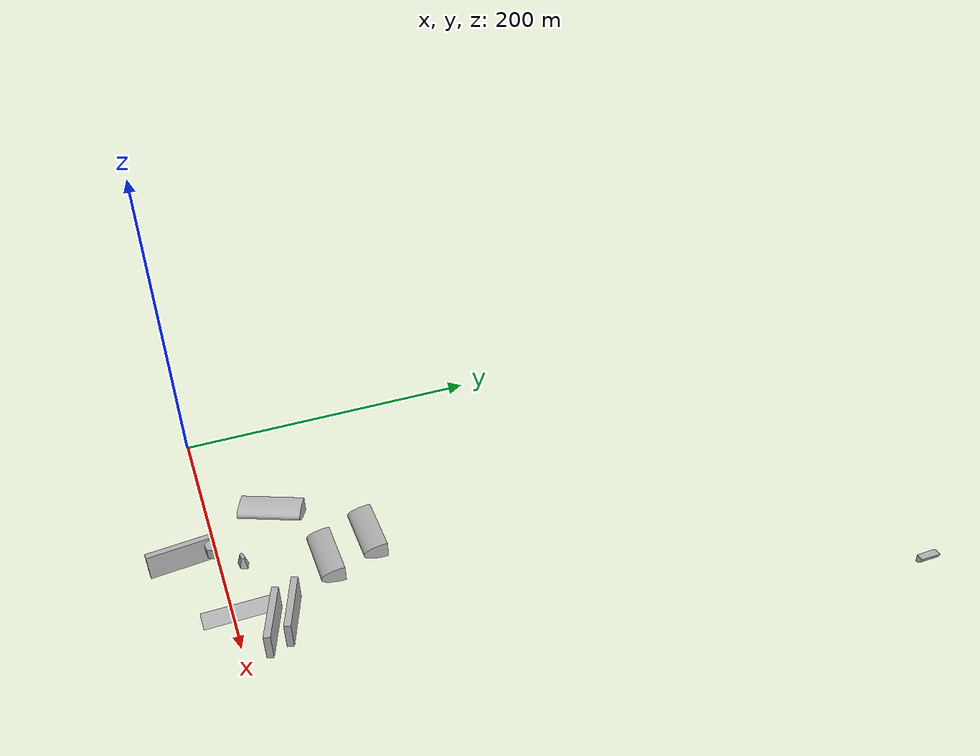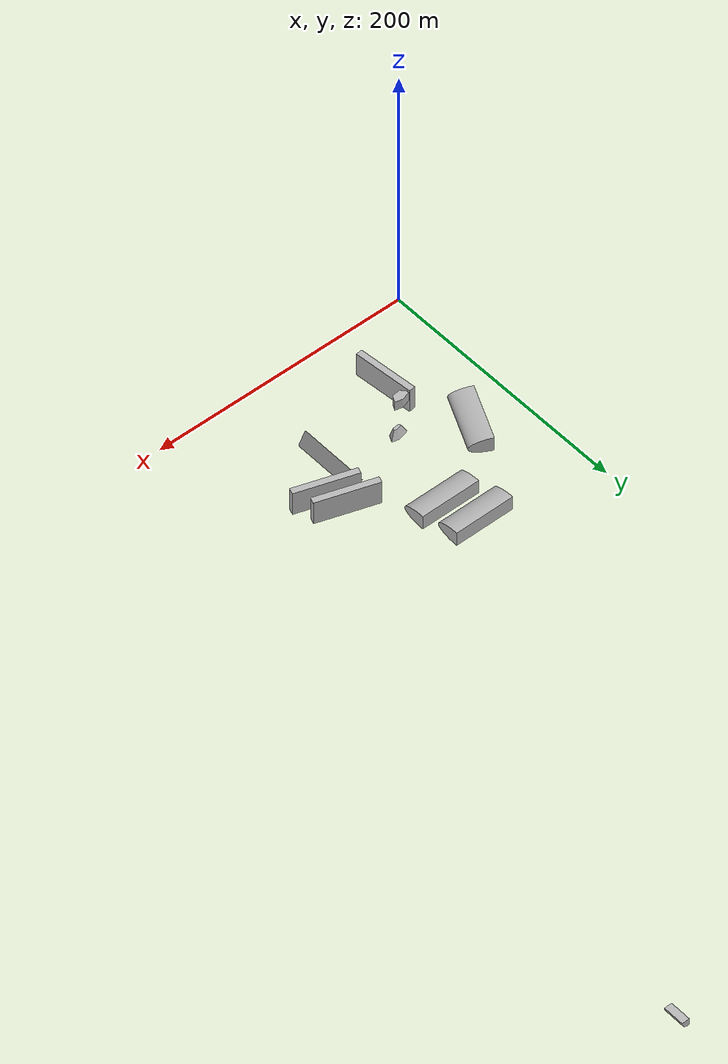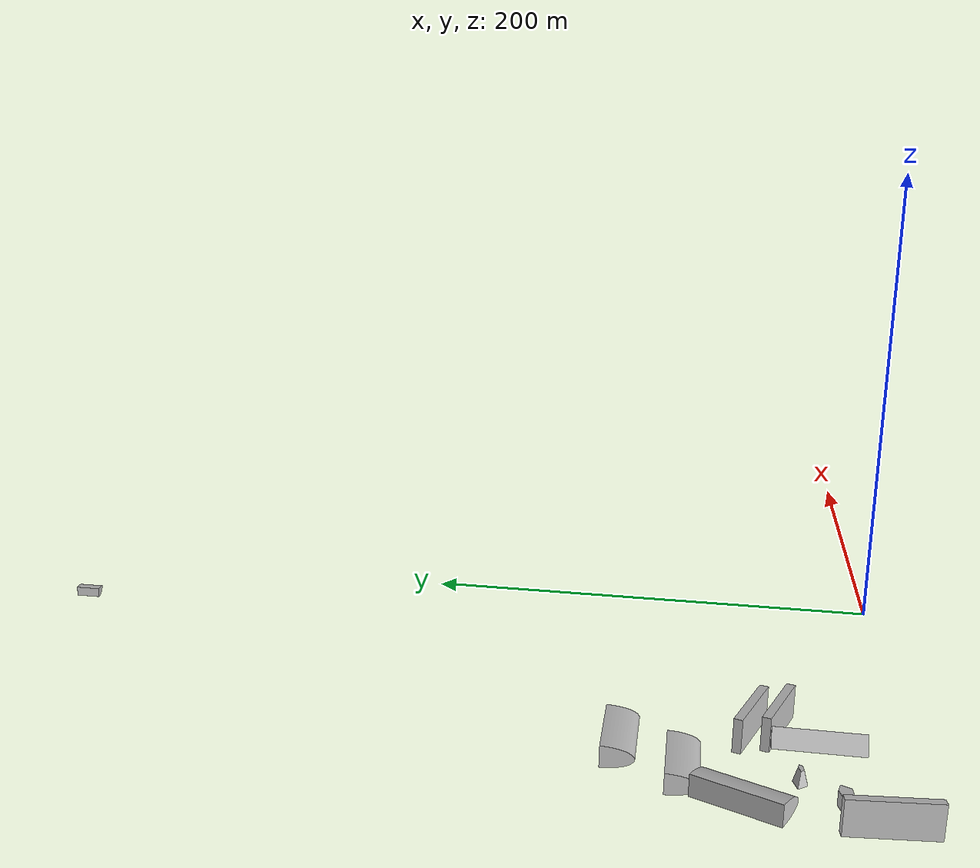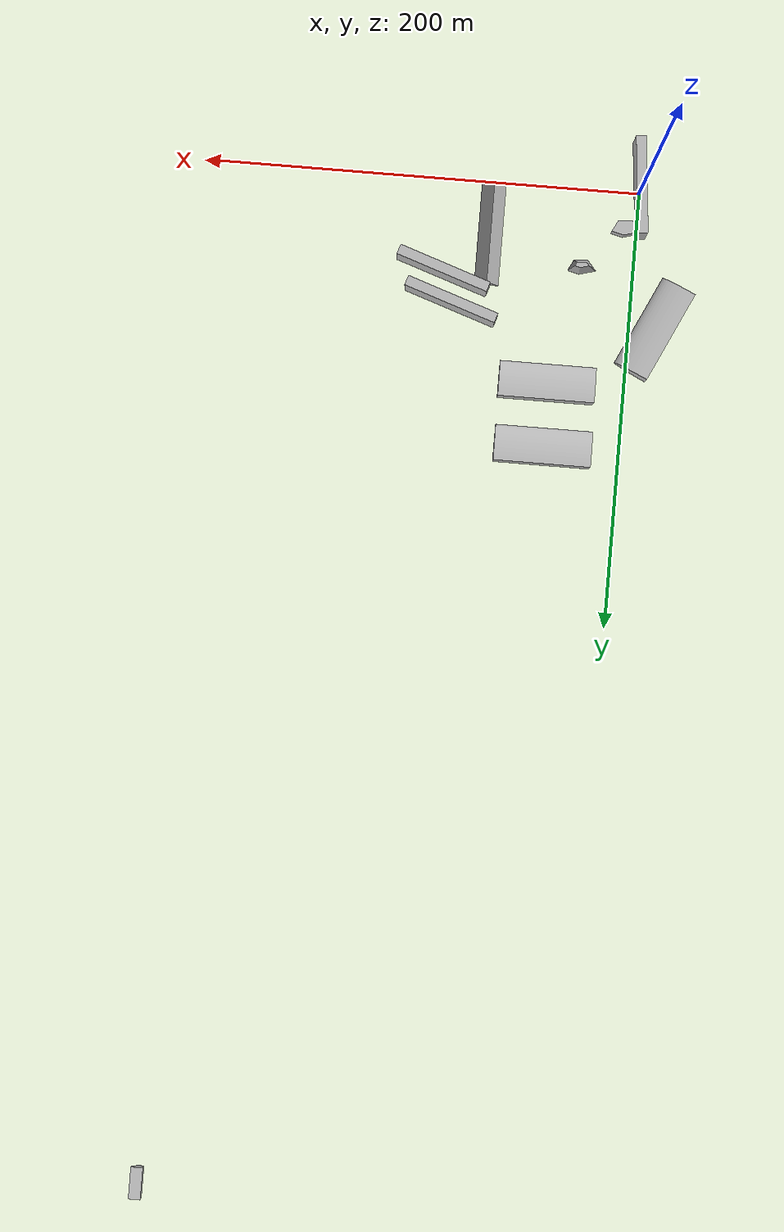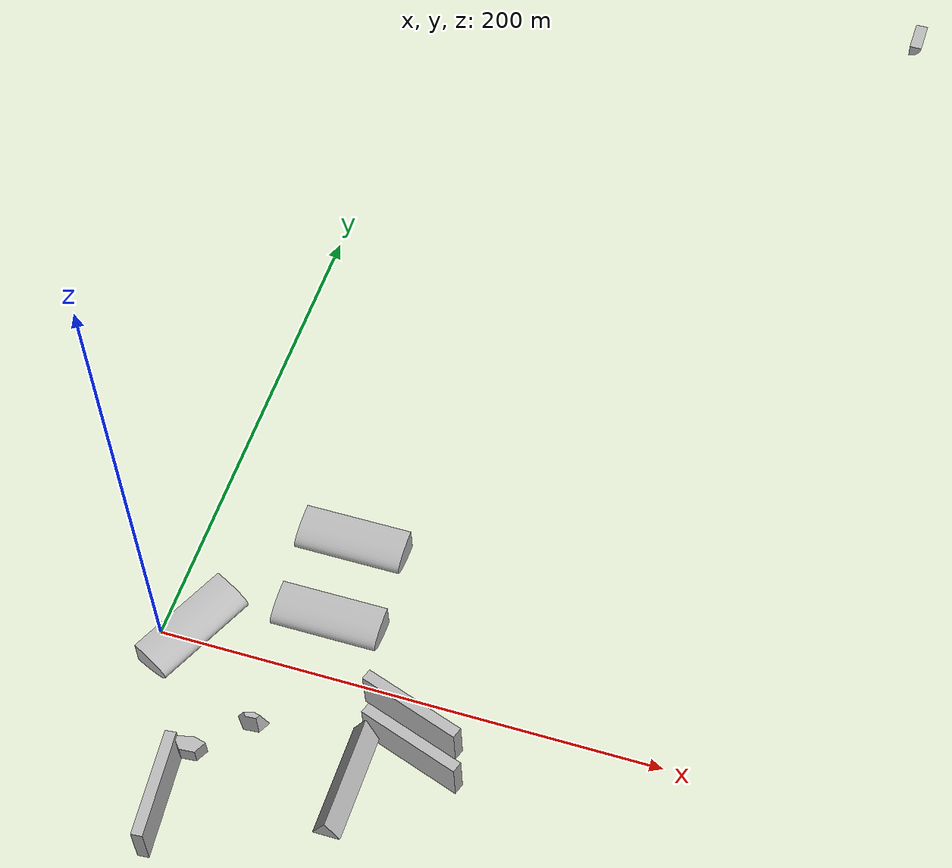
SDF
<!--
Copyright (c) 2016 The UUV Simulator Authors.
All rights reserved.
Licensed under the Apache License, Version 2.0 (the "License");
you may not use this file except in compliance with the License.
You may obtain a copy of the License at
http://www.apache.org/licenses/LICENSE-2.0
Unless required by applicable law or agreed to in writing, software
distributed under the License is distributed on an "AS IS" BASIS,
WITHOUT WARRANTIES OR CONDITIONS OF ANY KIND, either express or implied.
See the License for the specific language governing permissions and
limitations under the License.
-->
<sdf version="1.4">
 <world name="oceans_waves">
  <physics name="default_physics" default="true" type="ode">
   <max_step_size>0.002</max_step_size>
   <real_time_factor>1</real_time_factor>
   <real_time_update_rate>500</real_time_update_rate>
  </physics>
  <scene>
   <ambient>0.0 0.4 0.7 1.0</ambient>
   <sky><clouds><speed>12</speed></clouds></sky>
   <shadows>1</shadows>
  </scene>
  <spherical_coordinates>
   <latitude_deg>56.71897669633431</latitude_deg>
   <longitude_deg>3.515625</longitude_deg>
  </spherical_coordinates>
  <light type="directional" name="sun1">
   <pose>50 0 150 0 0 0</pose>
   <diffuse>1 1 1 1</diffuse>
   <specular>.1 .1 .1 1</specular>
   <direction>0.3 0.3 -1</direction>
   <cast_shadows>false</cast_shadows>
  </light>
  <light type="directional" name="sun_diffuse">
   <pose>-50 0 -150 0 0 0</pose>
   <diffuse>0.6 0.6 0.6 1</diffuse>
   <specular>0 0 0 1</specular>
   <direction>-0.3 -0.3 -1</direction>
   <cast_shadows>false</cast_shadows>
  </light>
  <include>
   <uri>model://obstacles/CubeSoft_1</uri>
   <name>cube_1</name>
   <pose>0 0 -100 0 1.57079633 0</pose>
   <static>true</static>
  </include>
  <include>
   <uri>model://obstacles/CubeSoft_2</uri>
   <name>cube_2</name>
   <pose>20 20 -100 0 1.57079633 0</pose>
   <static>true</static>
  </include>
  <include>
   <uri>model://obstacles/CubeSoft_10</uri>
   <name>cube_10_1</name>
   <pose>59 50 -98 0 1.57079633 1.25</pose>
   <static>true</static>
  </include>
  <include>
   <uri>model://obstacles/CubeSoft_10</uri>
   <name>cube_10_2</name>
   <pose>64 35 -98 0 1.57079633 1.25</pose>
   <static>true</static>
  </include>
  <include>
   <uri>model://obstacles/CubeSoft_12</uri>
   <name>cube_12</name>
   <pose>200 500 -100 0 1.57079633 0</pose>
   <static>true</static>
  </include>
  <include>
   <uri>model://obstacles/CubeSoft_13</uri>
   <name>cube_13_1</name>
   <pose>55 87 -102 0 0 -1.57079633</pose>
   <static>true</static>
  </include>
  <include>
   <uri>model://obstacles/CubeSoft_13</uri>
   <name>cube_13_2</name>
   <pose>55 120 -90 0 0 -1.57079633</pose>
   <static>true</static>
  </include>
  <include>
   <uri>model://obstacles/CubeSoft_13</uri>
   <name>cube_13_3</name>
   <pose>-17 75 -88 0 0 -0.44</pose>
   <static>true</static>
  </include>
  <include>
   <uri>model://obstacles/CubeSoft_15</uri>
   <name>cube_15_1</name>
   <pose>65 32 -100 0 1.57079633 0</pose>
   <static>true</static>
  </include>
  <include>
   <uri>model://obstacles/CubeSoft_10</uri>
   <name>cube_10_3</name>
   <pose>-10 2 -100 0 1.57079633 0.1</pose>
   <static>true</static>
  </include>
  <plugin name="underwater_current_plugin" filename="libuuv_underwater_current_ros_plugin.so">
   <namespace>hydrodynamics</namespace>
   <constant_current>
    <topic>current_velocity</topic>
    <velocity><mean>0</mean><min>0</min><max>5</max><mu>0.0</mu><noiseAmp>0.0</noiseAmp></velocity>
    <horizontal_angle>
     <mean>0</mean>
     <min>-3.141592653589793238</min>
     <max>3.141592653589793238</max>
     <mu>0.0</mu>
     <noiseAmp>0.0</noiseAmp>
    </horizontal_angle>
    <vertical_angle>
     <mean>0</mean>
     <min>-3.141592653589793238</min>
     <max>3.141592653589793238</max>
     <mu>0.0</mu>
     <noiseAmp>0.0</noiseAmp>
    </vertical_angle>
   </constant_current>
  </plugin>
  <plugin name="sc_interface" filename="libuuv_sc_ros_interface_plugin.so"/>
 </world>
</sdf>

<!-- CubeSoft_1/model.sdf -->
<sdf version="1.6">
    <model name="CubeSoft">
        <static>true</static>
        <link name="link">
            <pose>0 0 0 1.57 3.14159 0</pose>
            <collision name="collision">
                <geometry>
                    <mesh>
                        <uri>meshes/1.stl</uri>
                        <scale>0.001 0.001 0.001</scale>
                    </mesh>
                </geometry>
            </collision>
            <visual name="visual">
                <geometry>
                    <mesh>
                        <uri>meshes/1.stl</uri>
                        <scale>0.001 0.001 0.001</scale>
                    </mesh>
                </geometry>
            </visual>
        </link>
    </model>
</sdf>

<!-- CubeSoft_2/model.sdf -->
<sdf version="1.6">
    <model name="CubeSoft">
        <static>true</static>
        <link name="link">
            <pose>0 0 0 1.57 3.14159 0</pose>
            <collision name="collision">
                <geometry>
                    <mesh>
                        <uri>meshes/2.stl</uri>
                        <scale>0.001 0.001 0.001</scale>
                    </mesh>
                </geometry>
            </collision>
            <visual name="visual">
                <geometry>
                    <mesh>
                        <uri>meshes/2.stl</uri>
                        <scale>0.001 0.001 0.001</scale>
                    </mesh>
                </geometry>
            </visual>
        </link>
    </model>
</sdf>

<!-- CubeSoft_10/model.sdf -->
<sdf version="1.6">
    <model name="CubeSoft">
        <static>true</static>
        <link name="link">
            <pose>0 0 0 1.57 3.14159 0</pose>
            <collision name="collision">
                <geometry>
                    <mesh>
                        <uri>meshes/Cuboid_5x5x8.stl</uri>
                        <scale>0.004 0.001 0.006</scale>
                    </mesh>
                </geometry>
            </collision>
            <visual name="visual">
                <geometry>
                    <mesh>
                        <uri>meshes/Cuboid_5x5x8.stl</uri>
                        <scale>0.004 0.001 0.006</scale>
                    </mesh>
                </geometry>
            </visual>
        </link>
    </model>
</sdf>

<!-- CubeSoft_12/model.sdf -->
<sdf version="1.6">
    <model name="CubeSoft">
        <static>true</static>
        <link name="link">
            <pose>0 0 0 1.57 3.14159 0</pose>
            <collision name="collision">
                <geometry>
                    <mesh>
                        <uri>meshes/QuarterCylinder_12x16.stl</uri>
                        <scale>0.001 0.001 0.001</scale>
                    </mesh>
                </geometry>
            </collision>
            <visual name="visual">
                <geometry>
                    <mesh>
                        <uri>meshes/QuarterCylinder_12x16.stl</uri>
                        <scale>0.001 0.001 0.001</scale>
                    </mesh>
                </geometry>
            </visual>
        </link>
    </model>
</sdf>

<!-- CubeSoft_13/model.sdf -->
<sdf version="1.6">
    <model name="CubeSoft">
        <static>true</static>
        <link name="link">
            <pose>0 0 0 1.57 3.14159 0</pose>
            <collision name="collision">
                <geometry>
                    <mesh>
                        <uri>meshes/SemiCylinder_12x8.stl</uri>
                        <scale>0.003 0.001 0.004</scale>
                    </mesh>
                </geometry>
            </collision>
            <visual name="visual">
                <geometry>
                    <mesh>
                        <uri>meshes/SemiCylinder_12x8.stl</uri>
                        <scale>0.003 0.001 0.006</scale>
                    </mesh>
                </geometry>
            </visual>
        </link>
    </model>
</sdf>

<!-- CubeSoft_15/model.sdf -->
<sdf version="1.6">
    <model name="CubeSoft">
        <static>true</static>
        <link name="link">
            <pose>0 0 0 1.57 3.14159 0</pose>
            <collision name="collision">
                <geometry>
                    <mesh>
                        <uri>meshes/Triangle_12x12x10.stl</uri>
                        <scale>0.001 0.001 0.001</scale>
                    </mesh>
                </geometry>
            </collision>
            <visual name="visual">
                <geometry>
                    <mesh>
                        <uri>meshes/Triangle_12x12x10.stl</uri>
                        <scale>0.001 0.001 0.005</scale>
                    </mesh>
                </geometry>
            </visual>
        </link>
    </model>
</sdf>
